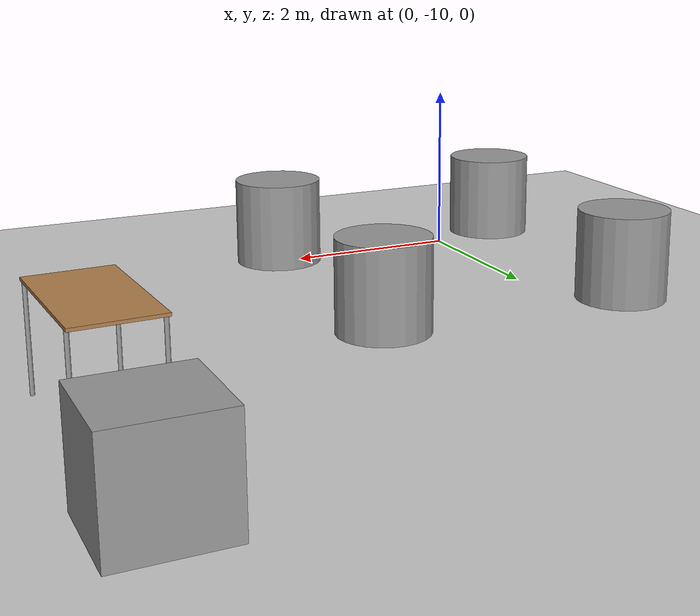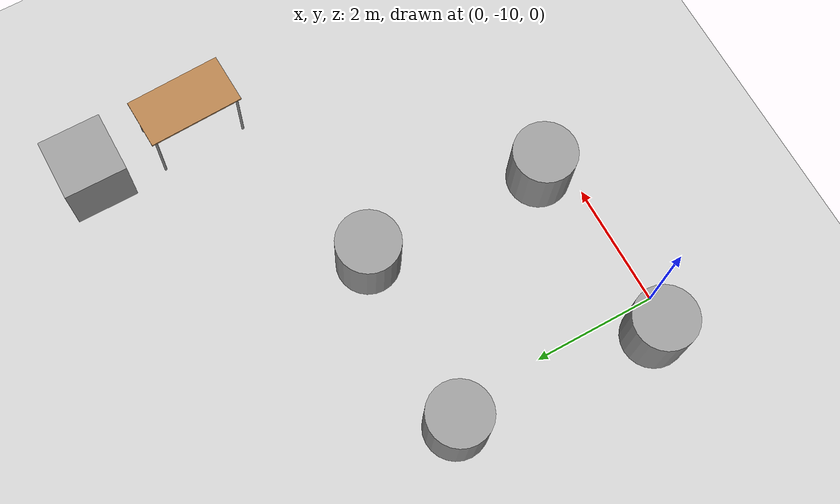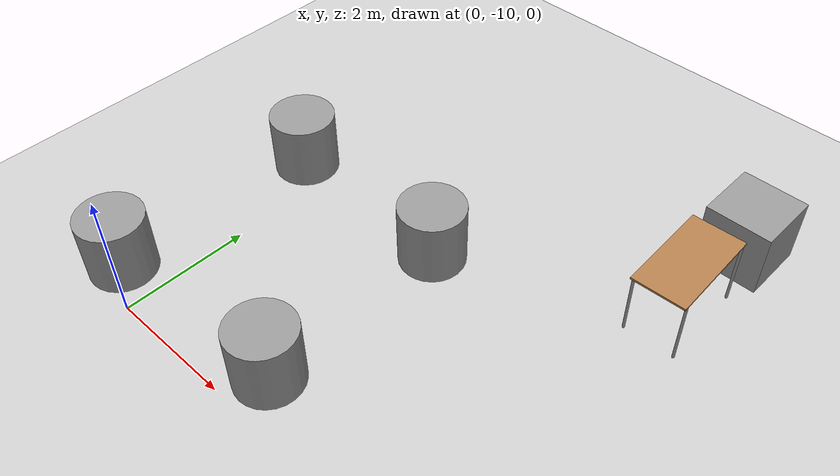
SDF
<sdf version="1.7">
 <world name="default">
  <light name="sun" type="directional">
   <pose>0 0 10 0 -0 0</pose>
   <diffuse>0.8 0.8 0.8 1</diffuse>
   <specular>0.2 0.2 0.2 1</specular>
   <attenuation>
    <range>1000</range>
    <constant>0.9</constant>
    <linear>0.01</linear>
    <quadratic>0.001</quadratic>
   </attenuation>
   <direction>-0.5 0.1 -0.9</direction>
   <spot><inner_angle>0</inner_angle><outer_angle>0</outer_angle><falloff>0</falloff></spot>
  </light>
  <model name="ground_plane">
   <static>1</static>
   <link name="link">
    <collision name="collision">
     <geometry><plane><normal>0 0 1</normal><size>100 100</size></plane></geometry>
     <surface>
      <contact><collide_bitmask>65535</collide_bitmask></contact>
      <friction><ode><mu>100</mu><mu2>50</mu2></ode></friction>
     </surface>
    </collision>
    <visual name="visual">
     <cast_shadows>0</cast_shadows>
     <geometry><plane><normal>0 0 1</normal><size>100 100</size></plane></geometry>
     <material>
      <script><uri>file://media/materials/scripts/gazebo.material</uri><name>Gazebo/Grey</name></script>
     </material>
    </visual>
   </link>
  </model>
  <gravity>0 0 -9.8</gravity>
  <magnetic_field>6e-06 2.3e-05 -4.2e-05</magnetic_field>
  <atmosphere type="adiabatic"/>
  <physics type="ode">
   <max_step_size>0.001</max_step_size>
   <real_time_factor>1</real_time_factor>
   <real_time_update_rate>1000</real_time_update_rate>
  </physics>
  <scene><ambient>0.4 0.4 0.4 1</ambient><background>0.7 0.7 0.7 1</background><shadows>1</shadows></scene>
  <spherical_coordinates>
   <surface_model>EARTH_WGS84</surface_model>
   <latitude_deg>0</latitude_deg>
   <longitude_deg>0</longitude_deg>
   <elevation>0</elevation>
   <heading_deg>0</heading_deg>
  </spherical_coordinates>
  <model name="unit_cylinder">
   <pose>2.51424 -6.45871 0.6898 0 -0 -5.5e-05</pose>
   <link name="link">
    <inertial>
     <mass>1</mass>
     <inertia><ixx>0.145833</ixx><ixy>0</ixy><ixz>0</ixz><iyy>0.145833</iyy><iyz>0</iyz><izz>0.125</izz></inertia>
    </inertial>
    <collision name="collision">
     <geometry><cylinder><radius>0.5</radius><length>1</length></cylinder></geometry>
    </collision>
    <visual name="visual">
     <geometry><cylinder><radius>0.5</radius><length>1</length></cylinder></geometry>
     <material>
      <script><name>Gazebo/Grey</name><uri>file://media/materials/scripts/gazebo.material</uri></script>
     </material>
    </visual>
   </link>
  </model>
  <model name="unit_cylinder_0">
   <pose>2.4912 -9.4574 0.689791 -1e-06 -0 -8e-05</pose>
   <link name="link">
    <inertial>
     <mass>1</mass>
     <inertia><ixx>0.145833</ixx><ixy>0</ixy><ixz>0</ixz><iyy>0.145833</iyy><iyz>0</iyz><izz>0.125</izz></inertia>
    </inertial>
    <collision name="collision">
     <geometry><cylinder><radius>0.5</radius><length>1</length></cylinder></geometry>
    </collision>
    <visual name="visual">
     <geometry><cylinder><radius>0.5</radius><length>1</length></cylinder></geometry>
     <material>
      <script><name>Gazebo/Grey</name><uri>file://media/materials/scripts/gazebo.material</uri></script>
     </material>
    </visual>
   </link>
  </model>
  <model name="unit_cylinder_1">
   <pose>-0.322976 -6.36643 0.6898 0 0 -7.9e-05</pose>
   <link name="link">
    <inertial>
     <mass>1</mass>
     <inertia><ixx>0.145833</ixx><ixy>0</ixy><ixz>0</ixz><iyy>0.145833</iyy><iyz>0</iyz><izz>0.125</izz></inertia>
    </inertial>
    <collision name="collision">
     <geometry><cylinder><radius>0.5</radius><length>1</length></cylinder></geometry>
    </collision>
    <visual name="visual">
     <geometry><cylinder><radius>0.5</radius><length>1</length></cylinder></geometry>
     <material>
      <script><name>Gazebo/Grey</name><uri>file://media/materials/scripts/gazebo.material</uri></script>
     </material>
    </visual>
   </link>
  </model>
  <model name="unit_cylinder_2">
   <pose>-0.530574 -9.64195 0.6898 -0 -0 -2.7e-05</pose>
   <link name="link">
    <inertial>
     <mass>1</mass>
     <inertia><ixx>0.145833</ixx><ixy>0</ixy><ixz>0</ixz><iyy>0.145833</iyy><iyz>0</iyz><izz>0.125</izz></inertia>
    </inertial>
    <collision name="collision">
     <geometry><cylinder><radius>0.5</radius><length>1</length></cylinder></geometry>
    </collision>
    <visual name="visual">
     <geometry><cylinder><radius>0.5</radius><length>1</length></cylinder></geometry>
     <material>
      <script><name>Gazebo/Grey</name><uri>file://media/materials/scripts/gazebo.material</uri></script>
     </material>
    </visual>
   </link>
  </model>
  <model name="table">
   <static>1</static>
   <link name="link">
    <collision name="surface">
     <pose>0 0 1 0 -0 0</pose>
     <geometry><box><size>1.5 0.8 0.03</size></box></geometry>
     <surface><friction><ode><mu>0.6</mu><mu2>0.6</mu2></ode></friction></surface>
    </collision>
    <visual name="visual1">
     <pose>0 0 1 0 -0 0</pose>
     <geometry><box><size>1.5 0.8 0.03</size></box></geometry>
     <material>
      <script><uri>file://media/materials/scripts/gazebo.material</uri><name>Gazebo/Wood</name></script>
     </material>
    </visual>
    <collision name="front_left_leg">
     <pose>0.68 0.38 0.5 0 -0 0</pose>
     <geometry><cylinder><radius>0.02</radius><length>1</length></cylinder></geometry>
    </collision>
    <visual name="front_left_leg">
     <pose>0.68 0.38 0.5 0 -0 0</pose>
     <geometry><cylinder><radius>0.02</radius><length>1</length></cylinder></geometry>
     <material>
      <script><uri>file://media/materials/scripts/gazebo.material</uri><name>Gazebo/Grey</name></script>
     </material>
    </visual>
    <collision name="front_right_leg">
     <pose>0.68 -0.38 0.5 0 -0 0</pose>
     <geometry><cylinder><radius>0.02</radius><length>1</length></cylinder></geometry>
    </collision>
    <visual name="front_right_leg">
     <pose>0.68 -0.38 0.5 0 -0 0</pose>
     <geometry><cylinder><radius>0.02</radius><length>1</length></cylinder></geometry>
     <material>
      <script><uri>file://media/materials/scripts/gazebo.material</uri><name>Gazebo/Grey</name></script>
     </material>
    </visual>
    <collision name="back_right_leg">
     <pose>-0.68 -0.38 0.5 0 -0 0</pose>
     <geometry><cylinder><radius>0.02</radius><length>1</length></cylinder></geometry>
    </collision>
    <visual name="back_right_leg">
     <pose>-0.68 -0.38 0.5 0 -0 0</pose>
     <geometry><cylinder><radius>0.02</radius><length>1</length></cylinder></geometry>
     <material>
      <script><uri>file://media/materials/scripts/gazebo.material</uri><name>Gazebo/Grey</name></script>
     </material>
    </visual>
    <collision name="back_left_leg">
     <pose>-0.68 0.38 0.5 0 -0 0</pose>
     <geometry><cylinder><radius>0.02</radius><length>1</length></cylinder></geometry>
    </collision>
    <visual name="back_left_leg">
     <pose>-0.68 0.38 0.5 0 -0 0</pose>
     <geometry><cylinder><radius>0.02</radius><length>1</length></cylinder></geometry>
     <material>
      <script><uri>file://media/materials/scripts/gazebo.material</uri><name>Gazebo/Grey</name></script>
     </material>
    </visual>
   </link>
   <pose>5.71128 -5.07552 0.38857 0 0 -1.53258</pose>
  </model>
  <model name="unit_box">
   <pose>5.73703 -3.36213 0.6898 -0 -0 -0</pose>
   <link name="link">
    <inertial>
     <mass>1</mass>
     <inertia>
      <ixx>0.166667</ixx>
      <ixy>0</ixy>
      <ixz>0</ixz>
      <iyy>0.166667</iyy>
      <iyz>0</iyz>
      <izz>0.166667</izz>
     </inertia>
    </inertial>
    <collision name="collision"><geometry><box><size>1 1 1</size></box></geometry></collision>
    <visual name="visual">
     <geometry><box><size>1 1 1</size></box></geometry>
     <material>
      <script><name>Gazebo/Grey</name><uri>file://media/materials/scripts/gazebo.material</uri></script>
     </material>
    </visual>
   </link>
  </model>
 </world>
</sdf>
